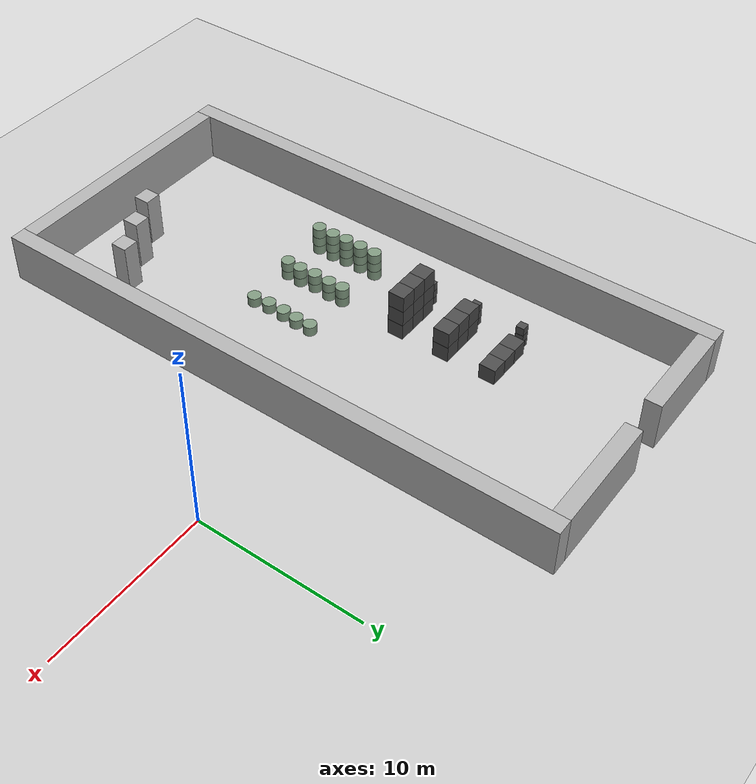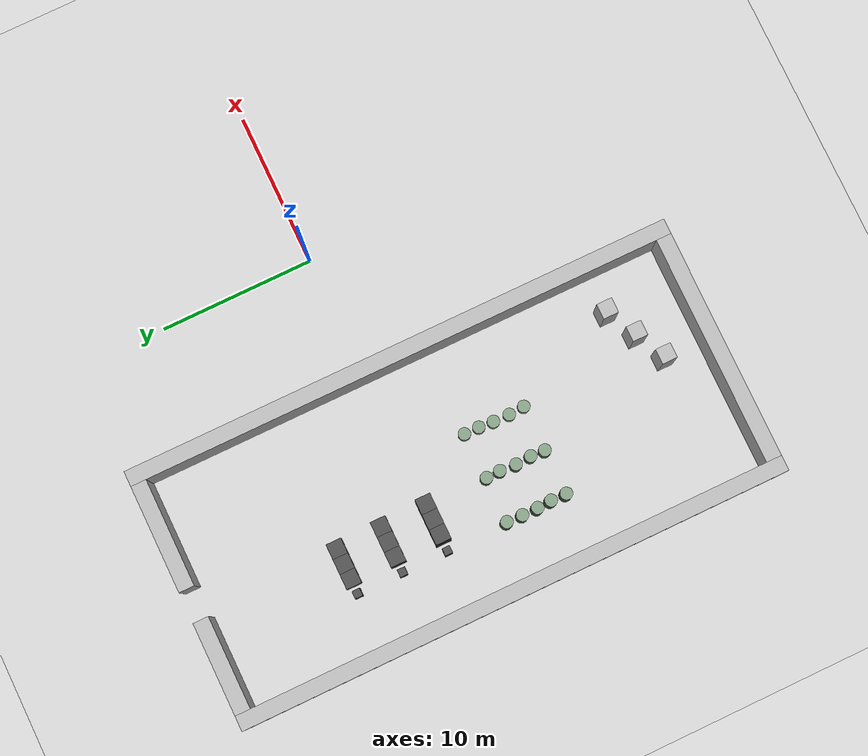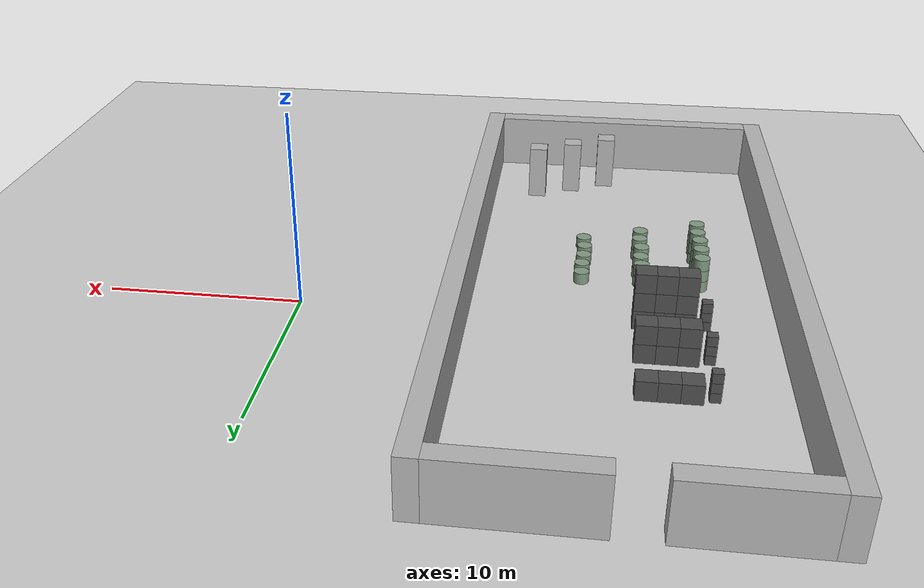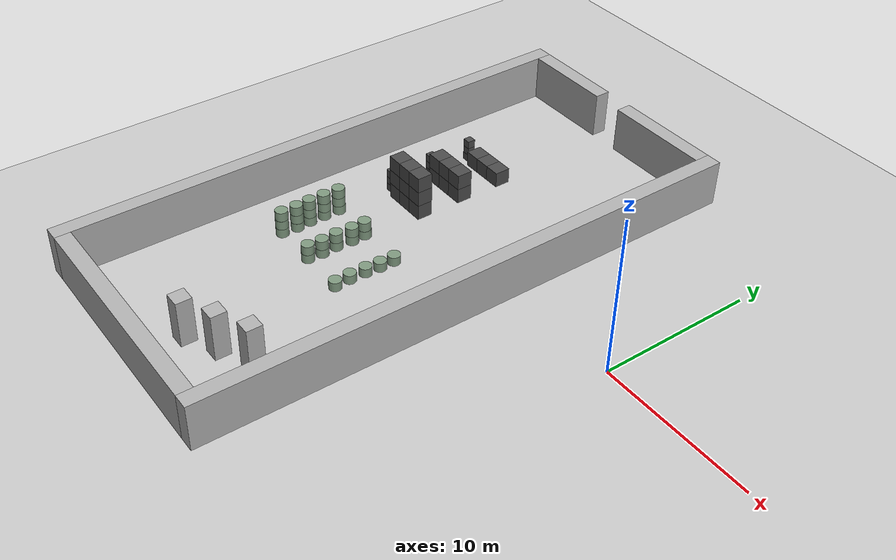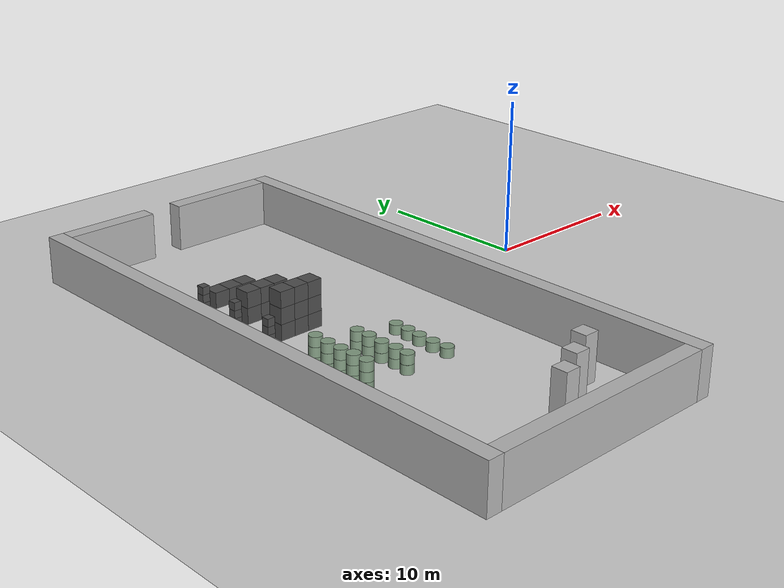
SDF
<sdf version="1.6">
 <world name="default">
  <light name="sun" type="directional">
   <cast_shadows>0</cast_shadows>
   <pose>0 0 10 0 -0 0</pose>
   <diffuse>0.8 0.8 0.8 1</diffuse>
   <specular>0.2 0.2 0.2 1</specular>
   <attenuation>
    <range>1000</range>
    <constant>0.9</constant>
    <linear>0.01</linear>
    <quadratic>0.001</quadratic>
   </attenuation>
   <direction>-0.5 0.1 -0.9</direction>
  </light>
  <include><uri>model://ground_plane</uri></include>
  <gravity>0 0 -9.8</gravity>
  <magnetic_field>6e-06 2.3e-05 -4.2e-05</magnetic_field>
  <atmosphere type="adiabatic"/>
  <physics name="default_physics" default="0" type="ode">
   <max_step_size>0.001</max_step_size>
   <real_time_factor>1</real_time_factor>
   <real_time_update_rate>1000</real_time_update_rate>
  </physics>
  <scene><ambient>0.4 0.4 0.4 1</ambient><background>0.7 0.7 0.7 1</background><shadows>0</shadows></scene>
  <spherical_coordinates>
   <surface_model>EARTH_WGS84</surface_model>
   <latitude_deg>0</latitude_deg>
   <longitude_deg>0</longitude_deg>
   <elevation>0</elevation>
   <heading_deg>0</heading_deg>
  </spherical_coordinates>
  <model name="unit_box_0">
   <pose>-24.0 -2.5 1.5 0 -0 0</pose>
   <static>True</static>
   <link name="link">
    <inertial>
     <mass>100</mass>
     <inertia>
      <ixx>0.166667</ixx>
      <ixy>0</ixy>
      <ixz>0</ixz>
      <iyy>0.166667</iyy>
      <iyz>0</iyz>
      <izz>0.166667</izz>
     </inertia>
    </inertial>
    <collision name="collision"><geometry><box><size>1.0 36.0 3.0</size></box></geometry></collision>
    <visual name="visual">
     <geometry><box><size>1.0 36.0 3.0</size></box></geometry>
     <material><ambient>0.7 0.7 0.7 1</ambient><diffuse>0.7 0.7 0.7 1</diffuse></material>
    </visual>
   </link>
  </model>
  <model name="unit_box_0">
   <pose>-8.0 -2.5 1.5 0 -0 0</pose>
   <static>True</static>
   <link name="link">
    <inertial>
     <mass>100</mass>
     <inertia>
      <ixx>0.166667</ixx>
      <ixy>0</ixy>
      <ixz>0</ixz>
      <iyy>0.166667</iyy>
      <iyz>0</iyz>
      <izz>0.166667</izz>
     </inertia>
    </inertial>
    <collision name="collision"><geometry><box><size>1.0 36.0 3.0</size></box></geometry></collision>
    <visual name="visual">
     <geometry><box><size>1.0 36.0 3.0</size></box></geometry>
     <material><ambient>0.7 0.7 0.7 1</ambient><diffuse>0.7 0.7 0.7 1</diffuse></material>
    </visual>
   </link>
  </model>
  <model name="unit_box_0">
   <pose>-16.0 -20.0 1.5 0 -0 0</pose>
   <static>True</static>
   <link name="link">
    <inertial>
     <mass>100</mass>
     <inertia>
      <ixx>0.166667</ixx>
      <ixy>0</ixy>
      <ixz>0</ixz>
      <iyy>0.166667</iyy>
      <iyz>0</iyz>
      <izz>0.166667</izz>
     </inertia>
    </inertial>
    <collision name="collision"><geometry><box><size>15.0 1.0 3.0</size></box></geometry></collision>
    <visual name="visual">
     <geometry><box><size>15.0 1.0 3.0</size></box></geometry>
     <material><ambient>0.7 0.7 0.7 1</ambient><diffuse>0.7 0.7 0.7 1</diffuse></material>
    </visual>
   </link>
  </model>
  <model name="unit_box_0">
   <pose>-20.5 15.0 1.5 0 -0 0</pose>
   <static>True</static>
   <link name="link">
    <inertial>
     <mass>100</mass>
     <inertia>
      <ixx>0.166667</ixx>
      <ixy>0</ixy>
      <ixz>0</ixz>
      <iyy>0.166667</iyy>
      <iyz>0</iyz>
      <izz>0.166667</izz>
     </inertia>
    </inertial>
    <collision name="collision"><geometry><box><size>6.0 1.0 3.0</size></box></geometry></collision>
    <visual name="visual">
     <geometry><box><size>6.0 1.0 3.0</size></box></geometry>
     <material><ambient>0.7 0.7 0.7 1</ambient><diffuse>0.7 0.7 0.7 1</diffuse></material>
    </visual>
   </link>
  </model>
  <model name="unit_box_0">
   <pose>-12.0 15.0 1.5 0 -0 0</pose>
   <static>True</static>
   <link name="link">
    <inertial>
     <mass>100</mass>
     <inertia>
      <ixx>0.166667</ixx>
      <ixy>0</ixy>
      <ixz>0</ixz>
      <iyy>0.166667</iyy>
      <iyz>0</iyz>
      <izz>0.166667</izz>
     </inertia>
    </inertial>
    <collision name="collision"><geometry><box><size>7.0 1.0 3.0</size></box></geometry></collision>
    <visual name="visual">
     <geometry><box><size>7.0 1.0 3.0</size></box></geometry>
     <material><ambient>0.7 0.7 0.7 1</ambient><diffuse>0.7 0.7 0.7 1</diffuse></material>
    </visual>
   </link>
  </model>
  <model name="unit_box_0">
   <pose>-15.0 -17.0 1.5 0 -0 0</pose>
   <static>True</static>
   <link name="link">
    <inertial>
     <mass>100</mass>
     <inertia>
      <ixx>0.166667</ixx>
      <ixy>0</ixy>
      <ixz>0</ixz>
      <iyy>0.166667</iyy>
      <iyz>0</iyz>
      <izz>0.166667</izz>
     </inertia>
    </inertial>
    <collision name="collision"><geometry><box><size>1.0 1.0 3.0</size></box></geometry></collision>
    <visual name="visual">
     <geometry><box><size>1.0 1.0 3.0</size></box></geometry>
     <material><ambient>0.7 0.7 0.7 1</ambient><diffuse>0.7 0.7 0.7 1</diffuse></material>
    </visual>
   </link>
  </model>
  <model name="unit_box_0">
   <pose>-13.0 -16.0 1.5 0 -0 0</pose>
   <static>True</static>
   <link name="link">
    <inertial>
     <mass>100</mass>
     <inertia>
      <ixx>0.166667</ixx>
      <ixy>0</ixy>
      <ixz>0</ixz>
      <iyy>0.166667</iyy>
      <iyz>0</iyz>
      <izz>0.166667</izz>
     </inertia>
    </inertial>
    <collision name="collision"><geometry><box><size>1.0 1.0 3.0</size></box></geometry></collision>
    <visual name="visual">
     <geometry><box><size>1.0 1.0 3.0</size></box></geometry>
     <material><ambient>0.7 0.7 0.7 1</ambient><diffuse>0.7 0.7 0.7 1</diffuse></material>
    </visual>
   </link>
  </model>
  <model name="unit_box_0">
   <pose>-11.0 -15.0 1.5 0 -0 0</pose>
   <static>True</static>
   <link name="link">
    <inertial>
     <mass>100</mass>
     <inertia>
      <ixx>0.166667</ixx>
      <ixy>0</ixy>
      <ixz>0</ixz>
      <iyy>0.166667</iyy>
      <iyz>0</iyz>
      <izz>0.166667</izz>
     </inertia>
    </inertial>
    <collision name="collision"><geometry><box><size>1.0 1.0 3.0</size></box></geometry></collision>
    <visual name="visual">
     <geometry><box><size>1.0 1.0 3.0</size></box></geometry>
     <material><ambient>0.7 0.7 0.7 1</ambient><diffuse>0.7 0.7 0.7 1</diffuse></material>
    </visual>
   </link>
  </model>
  <model name="unit_box_0">
   <pose>-20.0 0.0 0.25 0 -0 0</pose>
   <static>True</static>
   <link name="link">
    <inertial>
     <mass>100</mass>
     <inertia>
      <ixx>0.166667</ixx>
      <ixy>0</ixy>
      <ixz>0</ixz>
      <iyy>0.166667</iyy>
      <iyz>0</iyz>
      <izz>0.166667</izz>
     </inertia>
    </inertial>
    <collision name="collision"><geometry><box><size>0.5 0.5 0.5</size></box></geometry></collision>
    <visual name="visual">
     <geometry><box><size>0.5 0.5 0.5</size></box></geometry>
     <material><ambient>0.3 0.3 0.3 1</ambient><diffuse>0.3 0.3 0.3 1</diffuse></material>
    </visual>
   </link>
  </model>
  <model name="unit_box_1">
   <pose>-20.0 0.0 0.75 0 -0 0</pose>
   <static>True</static>
   <link name="link">
    <inertial>
     <mass>100</mass>
     <inertia>
      <ixx>0.166667</ixx>
      <ixy>0</ixy>
      <ixz>0</ixz>
      <iyy>0.166667</iyy>
      <iyz>0</iyz>
      <izz>0.166667</izz>
     </inertia>
    </inertial>
    <collision name="collision"><geometry><box><size>0.5 0.5 0.5</size></box></geometry></collision>
    <visual name="visual">
     <geometry><box><size>0.5 0.5 0.5</size></box></geometry>
     <material><ambient>0.3 0.3 0.3 1</ambient><diffuse>0.3 0.3 0.3 1</diffuse></material>
    </visual>
   </link>
  </model>
  <model name="unit_box_2">
   <pose>-20.0 0.0 1.25 0 -0 0</pose>
   <static>True</static>
   <link name="link">
    <inertial>
     <mass>100</mass>
     <inertia>
      <ixx>0.166667</ixx>
      <ixy>0</ixy>
      <ixz>0</ixz>
      <iyy>0.166667</iyy>
      <iyz>0</iyz>
      <izz>0.166667</izz>
     </inertia>
    </inertial>
    <collision name="collision"><geometry><box><size>0.5 0.5 0.5</size></box></geometry></collision>
    <visual name="visual">
     <geometry><box><size>0.5 0.5 0.5</size></box></geometry>
     <material><ambient>0.3 0.3 0.3 1</ambient><diffuse>0.3 0.3 0.3 1</diffuse></material>
    </visual>
   </link>
  </model>
  <model name="unit_box_3">
   <pose>-20.0 3.0 0.25 0 -0 0</pose>
   <static>True</static>
   <link name="link">
    <inertial>
     <mass>100</mass>
     <inertia>
      <ixx>0.166667</ixx>
      <ixy>0</ixy>
      <ixz>0</ixz>
      <iyy>0.166667</iyy>
      <iyz>0</iyz>
      <izz>0.166667</izz>
     </inertia>
    </inertial>
    <collision name="collision"><geometry><box><size>0.5 0.5 0.5</size></box></geometry></collision>
    <visual name="visual">
     <geometry><box><size>0.5 0.5 0.5</size></box></geometry>
     <material><ambient>0.3 0.3 0.3 1</ambient><diffuse>0.3 0.3 0.3 1</diffuse></material>
    </visual>
   </link>
  </model>
  <model name="unit_box_4">
   <pose>-20.0 3.0 0.75 0 -0 0</pose>
   <static>True</static>
   <link name="link">
    <inertial>
     <mass>100</mass>
     <inertia>
      <ixx>0.166667</ixx>
      <ixy>0</ixy>
      <ixz>0</ixz>
      <iyy>0.166667</iyy>
      <iyz>0</iyz>
      <izz>0.166667</izz>
     </inertia>
    </inertial>
    <collision name="collision"><geometry><box><size>0.5 0.5 0.5</size></box></geometry></collision>
    <visual name="visual">
     <geometry><box><size>0.5 0.5 0.5</size></box></geometry>
     <material><ambient>0.3 0.3 0.3 1</ambient><diffuse>0.3 0.3 0.3 1</diffuse></material>
    </visual>
   </link>
  </model>
  <model name="unit_box_5">
   <pose>-20.0 3.0 1.25 0 -0 0</pose>
   <static>True</static>
   <link name="link">
    <inertial>
     <mass>100</mass>
     <inertia>
      <ixx>0.166667</ixx>
      <ixy>0</ixy>
      <ixz>0</ixz>
      <iyy>0.166667</iyy>
      <iyz>0</iyz>
      <izz>0.166667</izz>
     </inertia>
    </inertial>
    <collision name="collision"><geometry><box><size>0.5 0.5 0.5</size></box></geometry></collision>
    <visual name="visual">
     <geometry><box><size>0.5 0.5 0.5</size></box></geometry>
     <material><ambient>0.3 0.3 0.3 1</ambient><diffuse>0.3 0.3 0.3 1</diffuse></material>
    </visual>
   </link>
  </model>
  <model name="unit_box_6">
   <pose>-20.0 6.0 0.25 0 -0 0</pose>
   <static>True</static>
   <link name="link">
    <inertial>
     <mass>100</mass>
     <inertia>
      <ixx>0.166667</ixx>
      <ixy>0</ixy>
      <ixz>0</ixz>
      <iyy>0.166667</iyy>
      <iyz>0</iyz>
      <izz>0.166667</izz>
     </inertia>
    </inertial>
    <collision name="collision"><geometry><box><size>0.5 0.5 0.5</size></box></geometry></collision>
    <visual name="visual">
     <geometry><box><size>0.5 0.5 0.5</size></box></geometry>
     <material><ambient>0.3 0.3 0.3 1</ambient><diffuse>0.3 0.3 0.3 1</diffuse></material>
    </visual>
   </link>
  </model>
  <model name="unit_box_7">
   <pose>-20.0 6.0 0.75 0 -0 0</pose>
   <static>True</static>
   <link name="link">
    <inertial>
     <mass>100</mass>
     <inertia>
      <ixx>0.166667</ixx>
      <ixy>0</ixy>
      <ixz>0</ixz>
      <iyy>0.166667</iyy>
      <iyz>0</iyz>
      <izz>0.166667</izz>
     </inertia>
    </inertial>
    <collision name="collision"><geometry><box><size>0.5 0.5 0.5</size></box></geometry></collision>
    <visual name="visual">
     <geometry><box><size>0.5 0.5 0.5</size></box></geometry>
     <material><ambient>0.3 0.3 0.3 1</ambient><diffuse>0.3 0.3 0.3 1</diffuse></material>
    </visual>
   </link>
  </model>
  <model name="unit_box_8">
   <pose>-20.0 6.0 1.25 0 -0 0</pose>
   <static>True</static>
   <link name="link">
    <inertial>
     <mass>100</mass>
     <inertia>
      <ixx>0.166667</ixx>
      <ixy>0</ixy>
      <ixz>0</ixz>
      <iyy>0.166667</iyy>
      <iyz>0</iyz>
      <izz>0.166667</izz>
     </inertia>
    </inertial>
    <collision name="collision"><geometry><box><size>0.5 0.5 0.5</size></box></geometry></collision>
    <visual name="visual">
     <geometry><box><size>0.5 0.5 0.5</size></box></geometry>
     <material><ambient>0.3 0.3 0.3 1</ambient><diffuse>0.3 0.3 0.3 1</diffuse></material>
    </visual>
   </link>
  </model>
  <model name="unit_box_9">
   <pose>-19.0 0.0 0.5 0 -0 0</pose>
   <static>True</static>
   <link name="link">
    <inertial>
     <mass>100</mass>
     <inertia>
      <ixx>0.166667</ixx>
      <ixy>0</ixy>
      <ixz>0</ixz>
      <iyy>0.166667</iyy>
      <iyz>0</iyz>
      <izz>0.166667</izz>
     </inertia>
    </inertial>
    <collision name="collision"><geometry><box><size>1.0 1.0 1.0</size></box></geometry></collision>
    <visual name="visual">
     <geometry><box><size>1.0 1.0 1.0</size></box></geometry>
     <material><ambient>0.3 0.3 0.3 1</ambient><diffuse>0.3 0.3 0.3 1</diffuse></material>
    </visual>
   </link>
  </model>
  <model name="unit_box_10">
   <pose>-19.0 0.0 1.5 0 -0 0</pose>
   <static>True</static>
   <link name="link">
    <inertial>
     <mass>100</mass>
     <inertia>
      <ixx>0.166667</ixx>
      <ixy>0</ixy>
      <ixz>0</ixz>
      <iyy>0.166667</iyy>
      <iyz>0</iyz>
      <izz>0.166667</izz>
     </inertia>
    </inertial>
    <collision name="collision"><geometry><box><size>1.0 1.0 1.0</size></box></geometry></collision>
    <visual name="visual">
     <geometry><box><size>1.0 1.0 1.0</size></box></geometry>
     <material><ambient>0.3 0.3 0.3 1</ambient><diffuse>0.3 0.3 0.3 1</diffuse></material>
    </visual>
   </link>
  </model>
  <model name="unit_box_11">
   <pose>-19.0 0.0 2.5 0 -0 0</pose>
   <static>True</static>
   <link name="link">
    <inertial>
     <mass>100</mass>
     <inertia>
      <ixx>0.166667</ixx>
      <ixy>0</ixy>
      <ixz>0</ixz>
      <iyy>0.166667</iyy>
      <iyz>0</iyz>
      <izz>0.166667</izz>
     </inertia>
    </inertial>
    <collision name="collision"><geometry><box><size>1.0 1.0 1.0</size></box></geometry></collision>
    <visual name="visual">
     <geometry><box><size>1.0 1.0 1.0</size></box></geometry>
     <material><ambient>0.3 0.3 0.3 1</ambient><diffuse>0.3 0.3 0.3 1</diffuse></material>
    </visual>
   </link>
  </model>
  <model name="unit_box_12">
   <pose>-19.0 3.0 0.5 0 -0 0</pose>
   <static>True</static>
   <link name="link">
    <inertial>
     <mass>100</mass>
     <inertia>
      <ixx>0.166667</ixx>
      <ixy>0</ixy>
      <ixz>0</ixz>
      <iyy>0.166667</iyy>
      <iyz>0</iyz>
      <izz>0.166667</izz>
     </inertia>
    </inertial>
    <collision name="collision"><geometry><box><size>1.0 1.0 1.0</size></box></geometry></collision>
    <visual name="visual">
     <geometry><box><size>1.0 1.0 1.0</size></box></geometry>
     <material><ambient>0.3 0.3 0.3 1</ambient><diffuse>0.3 0.3 0.3 1</diffuse></material>
    </visual>
   </link>
  </model>
  <model name="unit_box_13">
   <pose>-19.0 3.0 1.5 0 -0 0</pose>
   <static>True</static>
   <link name="link">
    <inertial>
     <mass>100</mass>
     <inertia>
      <ixx>0.166667</ixx>
      <ixy>0</ixy>
      <ixz>0</ixz>
      <iyy>0.166667</iyy>
      <iyz>0</iyz>
      <izz>0.166667</izz>
     </inertia>
    </inertial>
    <collision name="collision"><geometry><box><size>1.0 1.0 1.0</size></box></geometry></collision>
    <visual name="visual">
     <geometry><box><size>1.0 1.0 1.0</size></box></geometry>
     <material><ambient>0.3 0.3 0.3 1</ambient><diffuse>0.3 0.3 0.3 1</diffuse></material>
    </visual>
   </link>
  </model>
  <model name="unit_box_14">
   <pose>-19.0 6.0 0.5 0 -0 0</pose>
   <static>True</static>
   <link name="link">
    <inertial>
     <mass>100</mass>
     <inertia>
      <ixx>0.166667</ixx>
      <ixy>0</ixy>
      <ixz>0</ixz>
      <iyy>0.166667</iyy>
      <iyz>0</iyz>
      <izz>0.166667</izz>
     </inertia>
    </inertial>
    <collision name="collision"><geometry><box><size>1.0 1.0 1.0</size></box></geometry></collision>
    <visual name="visual">
     <geometry><box><size>1.0 1.0 1.0</size></box></geometry>
     <material><ambient>0.3 0.3 0.3 1</ambient><diffuse>0.3 0.3 0.3 1</diffuse></material>
    </visual>
   </link>
  </model>
  <model name="unit_box_15">
   <pose>-18.0 0.0 0.5 0 -0 0</pose>
   <static>True</static>
   <link name="link">
    <inertial>
     <mass>100</mass>
     <inertia>
      <ixx>0.166667</ixx>
      <ixy>0</ixy>
      <ixz>0</ixz>
      <iyy>0.166667</iyy>
      <iyz>0</iyz>
      <izz>0.166667</izz>
     </inertia>
    </inertial>
    <collision name="collision"><geometry><box><size>1.0 1.0 1.0</size></box></geometry></collision>
    <visual name="visual">
     <geometry><box><size>1.0 1.0 1.0</size></box></geometry>
     <material><ambient>0.3 0.3 0.3 1</ambient><diffuse>0.3 0.3 0.3 1</diffuse></material>
    </visual>
   </link>
  </model>
  <model name="unit_box_16">
   <pose>-18.0 0.0 1.5 0 -0 0</pose>
   <static>True</static>
   <link name="link">
    <inertial>
     <mass>100</mass>
     <inertia>
      <ixx>0.166667</ixx>
      <ixy>0</ixy>
      <ixz>0</ixz>
      <iyy>0.166667</iyy>
      <iyz>0</iyz>
      <izz>0.166667</izz>
     </inertia>
    </inertial>
    <collision name="collision"><geometry><box><size>1.0 1.0 1.0</size></box></geometry></collision>
    <visual name="visual">
     <geometry><box><size>1.0 1.0 1.0</size></box></geometry>
     <material><ambient>0.3 0.3 0.3 1</ambient><diffuse>0.3 0.3 0.3 1</diffuse></material>
    </visual>
   </link>
  </model>
  <model name="unit_box_17">
   <pose>-18.0 0.0 2.5 0 -0 0</pose>
   <static>True</static>
   <link name="link">
    <inertial>
     <mass>100</mass>
     <inertia>
      <ixx>0.166667</ixx>
      <ixy>0</ixy>
      <ixz>0</ixz>
      <iyy>0.166667</iyy>
      <iyz>0</iyz>
      <izz>0.166667</izz>
     </inertia>
    </inertial>
    <collision name="collision"><geometry><box><size>1.0 1.0 1.0</size></box></geometry></collision>
    <visual name="visual">
     <geometry><box><size>1.0 1.0 1.0</size></box></geometry>
     <material><ambient>0.3 0.3 0.3 1</ambient><diffuse>0.3 0.3 0.3 1</diffuse></material>
    </visual>
   </link>
  </model>
  <model name="unit_box_18">
   <pose>-18.0 3.0 0.5 0 -0 0</pose>
   <static>True</static>
   <link name="link">
    <inertial>
     <mass>100</mass>
     <inertia>
      <ixx>0.166667</ixx>
      <ixy>0</ixy>
      <ixz>0</ixz>
      <iyy>0.166667</iyy>
      <iyz>0</iyz>
      <izz>0.166667</izz>
     </inertia>
    </inertial>
    <collision name="collision"><geometry><box><size>1.0 1.0 1.0</size></box></geometry></collision>
    <visual name="visual">
     <geometry><box><size>1.0 1.0 1.0</size></box></geometry>
     <material><ambient>0.3 0.3 0.3 1</ambient><diffuse>0.3 0.3 0.3 1</diffuse></material>
    </visual>
   </link>
  </model>
  <model name="unit_box_19">
   <pose>-18.0 3.0 1.5 0 -0 0</pose>
   <static>True</static>
   <link name="link">
    <inertial>
     <mass>100</mass>
     <inertia>
      <ixx>0.166667</ixx>
      <ixy>0</ixy>
      <ixz>0</ixz>
      <iyy>0.166667</iyy>
      <iyz>0</iyz>
      <izz>0.166667</izz>
     </inertia>
    </inertial>
    <collision name="collision"><geometry><box><size>1.0 1.0 1.0</size></box></geometry></collision>
    <visual name="visual">
     <geometry><box><size>1.0 1.0 1.0</size></box></geometry>
     <material><ambient>0.3 0.3 0.3 1</ambient><diffuse>0.3 0.3 0.3 1</diffuse></material>
    </visual>
   </link>
  </model>
  <model name="unit_box_20">
   <pose>-18.0 6.0 0.5 0 -0 0</pose>
   <static>True</static>
   <link name="link">
    <inertial>
     <mass>100</mass>
     <inertia>
      <ixx>0.166667</ixx>
      <ixy>0</ixy>
      <ixz>0</ixz>
      <iyy>0.166667</iyy>
      <iyz>0</iyz>
      <izz>0.166667</izz>
     </inertia>
    </inertial>
    <collision name="collision"><geometry><box><size>1.0 1.0 1.0</size></box></geometry></collision>
    <visual name="visual">
     <geometry><box><size>1.0 1.0 1.0</size></box></geometry>
     <material><ambient>0.3 0.3 0.3 1</ambient><diffuse>0.3 0.3 0.3 1</diffuse></material>
    </visual>
   </link>
  </model>
  <model name="unit_box_21">
   <pose>-17.0 0.0 0.5 0 -0 0</pose>
   <static>True</static>
   <link name="link">
    <inertial>
     <mass>100</mass>
     <inertia>
      <ixx>0.166667</ixx>
      <ixy>0</ixy>
      <ixz>0</ixz>
      <iyy>0.166667</iyy>
      <iyz>0</iyz>
      <izz>0.166667</izz>
     </inertia>
    </inertial>
    <collision name="collision"><geometry><box><size>1.0 1.0 1.0</size></box></geometry></collision>
    <visual name="visual">
     <geometry><box><size>1.0 1.0 1.0</size></box></geometry>
     <material><ambient>0.3 0.3 0.3 1</ambient><diffuse>0.3 0.3 0.3 1</diffuse></material>
    </visual>
   </link>
  </model>
  <model name="unit_box_22">
   <pose>-17.0 0.0 1.5 0 -0 0</pose>
   <static>True</static>
   <link name="link">
    <inertial>
     <mass>100</mass>
     <inertia>
      <ixx>0.166667</ixx>
      <ixy>0</ixy>
      <ixz>0</ixz>
      <iyy>0.166667</iyy>
      <iyz>0</iyz>
      <izz>0.166667</izz>
     </inertia>
    </inertial>
    <collision name="collision"><geometry><box><size>1.0 1.0 1.0</size></box></geometry></collision>
    <visual name="visual">
     <geometry><box><size>1.0 1.0 1.0</size></box></geometry>
     <material><ambient>0.3 0.3 0.3 1</ambient><diffuse>0.3 0.3 0.3 1</diffuse></material>
    </visual>
   </link>
  </model>
  <model name="unit_box_23">
   <pose>-17.0 0.0 2.5 0 -0 0</pose>
   <static>True</static>
   <link name="link">
    <inertial>
     <mass>100</mass>
     <inertia>
      <ixx>0.166667</ixx>
      <ixy>0</ixy>
      <ixz>0</ixz>
      <iyy>0.166667</iyy>
      <iyz>0</iyz>
      <izz>0.166667</izz>
     </inertia>
    </inertial>
    <collision name="collision"><geometry><box><size>1.0 1.0 1.0</size></box></geometry></collision>
    <visual name="visual">
     <geometry><box><size>1.0 1.0 1.0</size></box></geometry>
     <material><ambient>0.3 0.3 0.3 1</ambient><diffuse>0.3 0.3 0.3 1</diffuse></material>
    </visual>
   </link>
  </model>
  <model name="unit_box_24">
   <pose>-17.0 3.0 0.5 0 -0 0</pose>
   <static>True</static>
   <link name="link">
    <inertial>
     <mass>100</mass>
     <inertia>
      <ixx>0.166667</ixx>
      <ixy>0</ixy>
      <ixz>0</ixz>
      <iyy>0.166667</iyy>
      <iyz>0</iyz>
      <izz>0.166667</izz>
     </inertia>
    </inertial>
    <collision name="collision"><geometry><box><size>1.0 1.0 1.0</size></box></geometry></collision>
    <visual name="visual">
     <geometry><box><size>1.0 1.0 1.0</size></box></geometry>
     <material><ambient>0.3 0.3 0.3 1</ambient><diffuse>0.3 0.3 0.3 1</diffuse></material>
    </visual>
   </link>
  </model>
  <model name="unit_box_25">
   <pose>-17.0 3.0 1.5 0 -0 0</pose>
   <static>True</static>
   <link name="link">
    <inertial>
     <mass>100</mass>
     <inertia>
      <ixx>0.166667</ixx>
      <ixy>0</ixy>
      <ixz>0</ixz>
      <iyy>0.166667</iyy>
      <iyz>0</iyz>
      <izz>0.166667</izz>
     </inertia>
    </inertial>
    <collision name="collision"><geometry><box><size>1.0 1.0 1.0</size></box></geometry></collision>
    <visual name="visual">
     <geometry><box><size>1.0 1.0 1.0</size></box></geometry>
     <material><ambient>0.3 0.3 0.3 1</ambient><diffuse>0.3 0.3 0.3 1</diffuse></material>
    </visual>
   </link>
  </model>
  <model name="unit_box_26">
   <pose>-17.0 6.0 0.5 0 -0 0</pose>
   <static>True</static>
   <link name="link">
    <inertial>
     <mass>100</mass>
     <inertia>
      <ixx>0.166667</ixx>
      <ixy>0</ixy>
      <ixz>0</ixz>
      <iyy>0.166667</iyy>
      <iyz>0</iyz>
      <izz>0.166667</izz>
     </inertia>
    </inertial>
    <collision name="collision"><geometry><box><size>1.0 1.0 1.0</size></box></geometry></collision>
    <visual name="visual">
     <geometry><box><size>1.0 1.0 1.0</size></box></geometry>
     <material><ambient>0.3 0.3 0.3 1</ambient><diffuse>0.3 0.3 0.3 1</diffuse></material>
    </visual>
   </link>
  </model>
  <model name="unit_cylinder_0">
   <pose>-19.983510326 -7.9803665074 0.3 0 -0 0</pose>
   <static>True</static>
   <link name="link">
    <inertial>
     <mass>100</mass>
     <inertia><ixx>0.145833</ixx><ixy>0</ixy><ixz>0</ixz><iyy>0.145833</iyy><iyz>0</iyz><izz>0.125</izz></inertia>
    </inertial>
    <collision name="collision">
     <geometry><cylinder><radius>0.4</radius><length>0.6</length></cylinder></geometry>
     <max_contacts>100</max_contacts>
    </collision>
    <visual name="visual">
     <geometry><cylinder><radius>0.4</radius><length>0.6</length></cylinder></geometry>
     <material><ambient>0.5 0.6 0.5 1</ambient><diffuse>0.5 0.6 0.5 1</diffuse></material>
    </visual>
   </link>
  </model>
  <model name="unit_cylinder_1">
   <pose>-19.9727468806 -7.98474625595 0.9 0 -0 0</pose>
   <static>True</static>
   <link name="link">
    <inertial>
     <mass>100</mass>
     <inertia><ixx>0.145833</ixx><ixy>0</ixy><ixz>0</ixz><iyy>0.145833</iyy><iyz>0</iyz><izz>0.125</izz></inertia>
    </inertial>
    <collision name="collision">
     <geometry><cylinder><radius>0.4</radius><length>0.6</length></cylinder></geometry>
     <max_contacts>100</max_contacts>
    </collision>
    <visual name="visual">
     <geometry><cylinder><radius>0.4</radius><length>0.6</length></cylinder></geometry>
     <material><ambient>0.5 0.6 0.5 1</ambient><diffuse>0.5 0.6 0.5 1</diffuse></material>
    </visual>
   </link>
  </model>
  <model name="unit_cylinder_2">
   <pose>-19.9781501069 -7.97168798199 1.5 0 -0 0</pose>
   <static>True</static>
   <link name="link">
    <inertial>
     <mass>100</mass>
     <inertia><ixx>0.145833</ixx><ixy>0</ixy><ixz>0</ixz><iyy>0.145833</iyy><iyz>0</iyz><izz>0.125</izz></inertia>
    </inertial>
    <collision name="collision">
     <geometry><cylinder><radius>0.4</radius><length>0.6</length></cylinder></geometry>
     <max_contacts>100</max_contacts>
    </collision>
    <visual name="visual">
     <geometry><cylinder><radius>0.4</radius><length>0.6</length></cylinder></geometry>
     <material><ambient>0.5 0.6 0.5 1</ambient><diffuse>0.5 0.6 0.5 1</diffuse></material>
    </visual>
   </link>
  </model>
  <model name="unit_cylinder_3">
   <pose>-19.9472931595 -6.95308038529 0.3 0 -0 0</pose>
   <static>True</static>
   <link name="link">
    <inertial>
     <mass>100</mass>
     <inertia><ixx>0.145833</ixx><ixy>0</ixy><ixz>0</ixz><iyy>0.145833</iyy><iyz>0</iyz><izz>0.125</izz></inertia>
    </inertial>
    <collision name="collision">
     <geometry><cylinder><radius>0.4</radius><length>0.6</length></cylinder></geometry>
     <max_contacts>100</max_contacts>
    </collision>
    <visual name="visual">
     <geometry><cylinder><radius>0.4</radius><length>0.6</length></cylinder></geometry>
     <material><ambient>0.5 0.6 0.5 1</ambient><diffuse>0.5 0.6 0.5 1</diffuse></material>
    </visual>
   </link>
  </model>
  <model name="unit_cylinder_4">
   <pose>-19.953520185 -6.95876860222 0.9 0 -0 0</pose>
   <static>True</static>
   <link name="link">
    <inertial>
     <mass>100</mass>
     <inertia><ixx>0.145833</ixx><ixy>0</ixy><ixz>0</ixz><iyy>0.145833</iyy><iyz>0</iyz><izz>0.125</izz></inertia>
    </inertial>
    <collision name="collision">
     <geometry><cylinder><radius>0.4</radius><length>0.6</length></cylinder></geometry>
     <max_contacts>100</max_contacts>
    </collision>
    <visual name="visual">
     <geometry><cylinder><radius>0.4</radius><length>0.6</length></cylinder></geometry>
     <material><ambient>0.5 0.6 0.5 1</ambient><diffuse>0.5 0.6 0.5 1</diffuse></material>
    </visual>
   </link>
  </model>
  <model name="unit_cylinder_5">
   <pose>-19.9592208408 -6.95885894129 1.5 0 -0 0</pose>
   <static>True</static>
   <link name="link">
    <inertial>
     <mass>100</mass>
     <inertia><ixx>0.145833</ixx><ixy>0</ixy><ixz>0</ixz><iyy>0.145833</iyy><iyz>0</iyz><izz>0.125</izz></inertia>
    </inertial>
    <collision name="collision">
     <geometry><cylinder><radius>0.4</radius><length>0.6</length></cylinder></geometry>
     <max_contacts>100</max_contacts>
    </collision>
    <visual name="visual">
     <geometry><cylinder><radius>0.4</radius><length>0.6</length></cylinder></geometry>
     <material><ambient>0.5 0.6 0.5 1</ambient><diffuse>0.5 0.6 0.5 1</diffuse></material>
    </visual>
   </link>
  </model>
  <model name="unit_cylinder_6">
   <pose>-20.0132523099 -6.02223878276 0.3 0 -0 0</pose>
   <static>True</static>
   <link name="link">
    <inertial>
     <mass>100</mass>
     <inertia><ixx>0.145833</ixx><ixy>0</ixy><ixz>0</ixz><iyy>0.145833</iyy><iyz>0</iyz><izz>0.125</izz></inertia>
    </inertial>
    <collision name="collision">
     <geometry><cylinder><radius>0.4</radius><length>0.6</length></cylinder></geometry>
     <max_contacts>100</max_contacts>
    </collision>
    <visual name="visual">
     <geometry><cylinder><radius>0.4</radius><length>0.6</length></cylinder></geometry>
     <material><ambient>0.5 0.6 0.5 1</ambient><diffuse>0.5 0.6 0.5 1</diffuse></material>
    </visual>
   </link>
  </model>
  <model name="unit_cylinder_7">
   <pose>-20.0153558443 -6.03044837171 0.9 0 -0 0</pose>
   <static>True</static>
   <link name="link">
    <inertial>
     <mass>100</mass>
     <inertia><ixx>0.145833</ixx><ixy>0</ixy><ixz>0</ixz><iyy>0.145833</iyy><iyz>0</iyz><izz>0.125</izz></inertia>
    </inertial>
    <collision name="collision">
     <geometry><cylinder><radius>0.4</radius><length>0.6</length></cylinder></geometry>
     <max_contacts>100</max_contacts>
    </collision>
    <visual name="visual">
     <geometry><cylinder><radius>0.4</radius><length>0.6</length></cylinder></geometry>
     <material><ambient>0.5 0.6 0.5 1</ambient><diffuse>0.5 0.6 0.5 1</diffuse></material>
    </visual>
   </link>
  </model>
  <model name="unit_cylinder_8">
   <pose>-20.0137323654 -6.03205641168 1.5 0 -0 0</pose>
   <static>True</static>
   <link name="link">
    <inertial>
     <mass>100</mass>
     <inertia><ixx>0.145833</ixx><ixy>0</ixy><ixz>0</ixz><iyy>0.145833</iyy><iyz>0</iyz><izz>0.125</izz></inertia>
    </inertial>
    <collision name="collision">
     <geometry><cylinder><radius>0.4</radius><length>0.6</length></cylinder></geometry>
     <max_contacts>100</max_contacts>
    </collision>
    <visual name="visual">
     <geometry><cylinder><radius>0.4</radius><length>0.6</length></cylinder></geometry>
     <material><ambient>0.5 0.6 0.5 1</ambient><diffuse>0.5 0.6 0.5 1</diffuse></material>
    </visual>
   </link>
  </model>
  <model name="unit_cylinder_9">
   <pose>-20.0114733924 -5.00858218917 0.3 0 -0 0</pose>
   <static>True</static>
   <link name="link">
    <inertial>
     <mass>100</mass>
     <inertia><ixx>0.145833</ixx><ixy>0</ixy><ixz>0</ixz><iyy>0.145833</iyy><iyz>0</iyz><izz>0.125</izz></inertia>
    </inertial>
    <collision name="collision">
     <geometry><cylinder><radius>0.4</radius><length>0.6</length></cylinder></geometry>
     <max_contacts>100</max_contacts>
    </collision>
    <visual name="visual">
     <geometry><cylinder><radius>0.4</radius><length>0.6</length></cylinder></geometry>
     <material><ambient>0.5 0.6 0.5 1</ambient><diffuse>0.5 0.6 0.5 1</diffuse></material>
    </visual>
   </link>
  </model>
  <model name="unit_cylinder_10">
   <pose>-20.0017003913 -5.00246272029 0.9 0 -0 0</pose>
   <static>True</static>
   <link name="link">
    <inertial>
     <mass>100</mass>
     <inertia><ixx>0.145833</ixx><ixy>0</ixy><ixz>0</ixz><iyy>0.145833</iyy><iyz>0</iyz><izz>0.125</izz></inertia>
    </inertial>
    <collision name="collision">
     <geometry><cylinder><radius>0.4</radius><length>0.6</length></cylinder></geometry>
     <max_contacts>100</max_contacts>
    </collision>
    <visual name="visual">
     <geometry><cylinder><radius>0.4</radius><length>0.6</length></cylinder></geometry>
     <material><ambient>0.5 0.6 0.5 1</ambient><diffuse>0.5 0.6 0.5 1</diffuse></material>
    </visual>
   </link>
  </model>
  <model name="unit_cylinder_11">
   <pose>-20.0157384298 -5.01272921444 1.5 0 -0 0</pose>
   <static>True</static>
   <link name="link">
    <inertial>
     <mass>100</mass>
     <inertia><ixx>0.145833</ixx><ixy>0</ixy><ixz>0</ixz><iyy>0.145833</iyy><iyz>0</iyz><izz>0.125</izz></inertia>
    </inertial>
    <collision name="collision">
     <geometry><cylinder><radius>0.4</radius><length>0.6</length></cylinder></geometry>
     <max_contacts>100</max_contacts>
    </collision>
    <visual name="visual">
     <geometry><cylinder><radius>0.4</radius><length>0.6</length></cylinder></geometry>
     <material><ambient>0.5 0.6 0.5 1</ambient><diffuse>0.5 0.6 0.5 1</diffuse></material>
    </visual>
   </link>
  </model>
  <model name="unit_cylinder_12">
   <pose>-19.9905237088 -3.96755594647 0.3 0 -0 0</pose>
   <static>True</static>
   <link name="link">
    <inertial>
     <mass>100</mass>
     <inertia><ixx>0.145833</ixx><ixy>0</ixy><ixz>0</ixz><iyy>0.145833</iyy><iyz>0</iyz><izz>0.125</izz></inertia>
    </inertial>
    <collision name="collision">
     <geometry><cylinder><radius>0.4</radius><length>0.6</length></cylinder></geometry>
     <max_contacts>100</max_contacts>
    </collision>
    <visual name="visual">
     <geometry><cylinder><radius>0.4</radius><length>0.6</length></cylinder></geometry>
     <material><ambient>0.5 0.6 0.5 1</ambient><diffuse>0.5 0.6 0.5 1</diffuse></material>
    </visual>
   </link>
  </model>
  <model name="unit_cylinder_13">
   <pose>-19.9976394683 -3.98372226822 0.9 0 -0 0</pose>
   <static>True</static>
   <link name="link">
    <inertial>
     <mass>100</mass>
     <inertia><ixx>0.145833</ixx><ixy>0</ixy><ixz>0</ixz><iyy>0.145833</iyy><iyz>0</iyz><izz>0.125</izz></inertia>
    </inertial>
    <collision name="collision">
     <geometry><cylinder><radius>0.4</radius><length>0.6</length></cylinder></geometry>
     <max_contacts>100</max_contacts>
    </collision>
    <visual name="visual">
     <geometry><cylinder><radius>0.4</radius><length>0.6</length></cylinder></geometry>
     <material><ambient>0.5 0.6 0.5 1</ambient><diffuse>0.5 0.6 0.5 1</diffuse></material>
    </visual>
   </link>
  </model>
  <model name="unit_cylinder_14">
   <pose>-19.9864309566 -3.97713254289 1.5 0 -0 0</pose>
   <static>True</static>
   <link name="link">
    <inertial>
     <mass>100</mass>
     <inertia><ixx>0.145833</ixx><ixy>0</ixy><ixz>0</ixz><iyy>0.145833</iyy><iyz>0</iyz><izz>0.125</izz></inertia>
    </inertial>
    <collision name="collision">
     <geometry><cylinder><radius>0.4</radius><length>0.6</length></cylinder></geometry>
     <max_contacts>100</max_contacts>
    </collision>
    <visual name="visual">
     <geometry><cylinder><radius>0.4</radius><length>0.6</length></cylinder></geometry>
     <material><ambient>0.5 0.6 0.5 1</ambient><diffuse>0.5 0.6 0.5 1</diffuse></material>
    </visual>
   </link>
  </model>
  <model name="unit_cylinder_15">
   <pose>-17.0116873006 -7.99551521531 0.3 0 -0 0</pose>
   <static>True</static>
   <link name="link">
    <inertial>
     <mass>100</mass>
     <inertia><ixx>0.145833</ixx><ixy>0</ixy><ixz>0</ixz><iyy>0.145833</iyy><iyz>0</iyz><izz>0.125</izz></inertia>
    </inertial>
    <collision name="collision">
     <geometry><cylinder><radius>0.4</radius><length>0.6</length></cylinder></geometry>
     <max_contacts>100</max_contacts>
    </collision>
    <visual name="visual">
     <geometry><cylinder><radius>0.4</radius><length>0.6</length></cylinder></geometry>
     <material><ambient>0.5 0.6 0.5 1</ambient><diffuse>0.5 0.6 0.5 1</diffuse></material>
    </visual>
   </link>
  </model>
  <model name="unit_cylinder_16">
   <pose>-17.0085553583 -7.98912948422 0.9 0 -0 0</pose>
   <static>True</static>
   <link name="link">
    <inertial>
     <mass>100</mass>
     <inertia><ixx>0.145833</ixx><ixy>0</ixy><ixz>0</ixz><iyy>0.145833</iyy><iyz>0</iyz><izz>0.125</izz></inertia>
    </inertial>
    <collision name="collision">
     <geometry><cylinder><radius>0.4</radius><length>0.6</length></cylinder></geometry>
     <max_contacts>100</max_contacts>
    </collision>
    <visual name="visual">
     <geometry><cylinder><radius>0.4</radius><length>0.6</length></cylinder></geometry>
     <material><ambient>0.5 0.6 0.5 1</ambient><diffuse>0.5 0.6 0.5 1</diffuse></material>
    </visual>
   </link>
  </model>
  <model name="unit_cylinder_17">
   <pose>-16.9506456513 -7.04757733804 0.3 0 -0 0</pose>
   <static>True</static>
   <link name="link">
    <inertial>
     <mass>100</mass>
     <inertia><ixx>0.145833</ixx><ixy>0</ixy><ixz>0</ixz><iyy>0.145833</iyy><iyz>0</iyz><izz>0.125</izz></inertia>
    </inertial>
    <collision name="collision">
     <geometry><cylinder><radius>0.4</radius><length>0.6</length></cylinder></geometry>
     <max_contacts>100</max_contacts>
    </collision>
    <visual name="visual">
     <geometry><cylinder><radius>0.4</radius><length>0.6</length></cylinder></geometry>
     <material><ambient>0.5 0.6 0.5 1</ambient><diffuse>0.5 0.6 0.5 1</diffuse></material>
    </visual>
   </link>
  </model>
  <model name="unit_cylinder_18">
   <pose>-16.9563102854 -7.05286483911 0.9 0 -0 0</pose>
   <static>True</static>
   <link name="link">
    <inertial>
     <mass>100</mass>
     <inertia><ixx>0.145833</ixx><ixy>0</ixy><ixz>0</ixz><iyy>0.145833</iyy><iyz>0</iyz><izz>0.125</izz></inertia>
    </inertial>
    <collision name="collision">
     <geometry><cylinder><radius>0.4</radius><length>0.6</length></cylinder></geometry>
     <max_contacts>100</max_contacts>
    </collision>
    <visual name="visual">
     <geometry><cylinder><radius>0.4</radius><length>0.6</length></cylinder></geometry>
     <material><ambient>0.5 0.6 0.5 1</ambient><diffuse>0.5 0.6 0.5 1</diffuse></material>
    </visual>
   </link>
  </model>
  <model name="unit_cylinder_19">
   <pose>-17.0362589415 -6.03237471311 0.3 0 -0 0</pose>
   <static>True</static>
   <link name="link">
    <inertial>
     <mass>100</mass>
     <inertia><ixx>0.145833</ixx><ixy>0</ixy><ixz>0</ixz><iyy>0.145833</iyy><iyz>0</iyz><izz>0.125</izz></inertia>
    </inertial>
    <collision name="collision">
     <geometry><cylinder><radius>0.4</radius><length>0.6</length></cylinder></geometry>
     <max_contacts>100</max_contacts>
    </collision>
    <visual name="visual">
     <geometry><cylinder><radius>0.4</radius><length>0.6</length></cylinder></geometry>
     <material><ambient>0.5 0.6 0.5 1</ambient><diffuse>0.5 0.6 0.5 1</diffuse></material>
    </visual>
   </link>
  </model>
  <model name="unit_cylinder_20">
   <pose>-17.0287719694 -6.03411489571 0.9 0 -0 0</pose>
   <static>True</static>
   <link name="link">
    <inertial>
     <mass>100</mass>
     <inertia><ixx>0.145833</ixx><ixy>0</ixy><ixz>0</ixz><iyy>0.145833</iyy><iyz>0</iyz><izz>0.125</izz></inertia>
    </inertial>
    <collision name="collision">
     <geometry><cylinder><radius>0.4</radius><length>0.6</length></cylinder></geometry>
     <max_contacts>100</max_contacts>
    </collision>
    <visual name="visual">
     <geometry><cylinder><radius>0.4</radius><length>0.6</length></cylinder></geometry>
     <material><ambient>0.5 0.6 0.5 1</ambient><diffuse>0.5 0.6 0.5 1</diffuse></material>
    </visual>
   </link>
  </model>
  <model name="unit_cylinder_21">
   <pose>-16.9636943974 -4.96675095586 0.3 0 -0 0</pose>
   <static>True</static>
   <link name="link">
    <inertial>
     <mass>100</mass>
     <inertia><ixx>0.145833</ixx><ixy>0</ixy><ixz>0</ixz><iyy>0.145833</iyy><iyz>0</iyz><izz>0.125</izz></inertia>
    </inertial>
    <collision name="collision">
     <geometry><cylinder><radius>0.4</radius><length>0.6</length></cylinder></geometry>
     <max_contacts>100</max_contacts>
    </collision>
    <visual name="visual">
     <geometry><cylinder><radius>0.4</radius><length>0.6</length></cylinder></geometry>
     <material><ambient>0.5 0.6 0.5 1</ambient><diffuse>0.5 0.6 0.5 1</diffuse></material>
    </visual>
   </link>
  </model>
  <model name="unit_cylinder_22">
   <pose>-16.9647075145 -4.97093291946 0.9 0 -0 0</pose>
   <static>True</static>
   <link name="link">
    <inertial>
     <mass>100</mass>
     <inertia><ixx>0.145833</ixx><ixy>0</ixy><ixz>0</ixz><iyy>0.145833</iyy><iyz>0</iyz><izz>0.125</izz></inertia>
    </inertial>
    <collision name="collision">
     <geometry><cylinder><radius>0.4</radius><length>0.6</length></cylinder></geometry>
     <max_contacts>100</max_contacts>
    </collision>
    <visual name="visual">
     <geometry><cylinder><radius>0.4</radius><length>0.6</length></cylinder></geometry>
     <material><ambient>0.5 0.6 0.5 1</ambient><diffuse>0.5 0.6 0.5 1</diffuse></material>
    </visual>
   </link>
  </model>
  <model name="unit_cylinder_23">
   <pose>-16.9950752606 -4.04936252095 0.3 0 -0 0</pose>
   <static>True</static>
   <link name="link">
    <inertial>
     <mass>100</mass>
     <inertia><ixx>0.145833</ixx><ixy>0</ixy><ixz>0</ixz><iyy>0.145833</iyy><iyz>0</iyz><izz>0.125</izz></inertia>
    </inertial>
    <collision name="collision">
     <geometry><cylinder><radius>0.4</radius><length>0.6</length></cylinder></geometry>
     <max_contacts>100</max_contacts>
    </collision>
    <visual name="visual">
     <geometry><cylinder><radius>0.4</radius><length>0.6</length></cylinder></geometry>
     <material><ambient>0.5 0.6 0.5 1</ambient><diffuse>0.5 0.6 0.5 1</diffuse></material>
    </visual>
   </link>
  </model>
  <model name="unit_cylinder_24">
   <pose>-17.0067414063 -4.05441555662 0.9 0 -0 0</pose>
   <static>True</static>
   <link name="link">
    <inertial>
     <mass>100</mass>
     <inertia><ixx>0.145833</ixx><ixy>0</ixy><ixz>0</ixz><iyy>0.145833</iyy><iyz>0</iyz><izz>0.125</izz></inertia>
    </inertial>
    <collision name="collision">
     <geometry><cylinder><radius>0.4</radius><length>0.6</length></cylinder></geometry>
     <max_contacts>100</max_contacts>
    </collision>
    <visual name="visual">
     <geometry><cylinder><radius>0.4</radius><length>0.6</length></cylinder></geometry>
     <material><ambient>0.5 0.6 0.5 1</ambient><diffuse>0.5 0.6 0.5 1</diffuse></material>
    </visual>
   </link>
  </model>
  <model name="unit_cylinder_25">
   <pose>-13.9750387548 -8.04336538116 0.3 0 -0 0</pose>
   <static>True</static>
   <link name="link">
    <inertial>
     <mass>100</mass>
     <inertia><ixx>0.145833</ixx><ixy>0</ixy><ixz>0</ixz><iyy>0.145833</iyy><iyz>0</iyz><izz>0.125</izz></inertia>
    </inertial>
    <collision name="collision">
     <geometry><cylinder><radius>0.4</radius><length>0.6</length></cylinder></geometry>
     <max_contacts>100</max_contacts>
    </collision>
    <visual name="visual">
     <geometry><cylinder><radius>0.4</radius><length>0.6</length></cylinder></geometry>
     <material><ambient>0.5 0.6 0.5 1</ambient><diffuse>0.5 0.6 0.5 1</diffuse></material>
    </visual>
   </link>
  </model>
  <model name="unit_cylinder_26">
   <pose>-14.041957367 -7.0191204853 0.3 0 -0 0</pose>
   <static>True</static>
   <link name="link">
    <inertial>
     <mass>100</mass>
     <inertia><ixx>0.145833</ixx><ixy>0</ixy><ixz>0</ixz><iyy>0.145833</iyy><iyz>0</iyz><izz>0.125</izz></inertia>
    </inertial>
    <collision name="collision">
     <geometry><cylinder><radius>0.4</radius><length>0.6</length></cylinder></geometry>
     <max_contacts>100</max_contacts>
    </collision>
    <visual name="visual">
     <geometry><cylinder><radius>0.4</radius><length>0.6</length></cylinder></geometry>
     <material><ambient>0.5 0.6 0.5 1</ambient><diffuse>0.5 0.6 0.5 1</diffuse></material>
    </visual>
   </link>
  </model>
  <model name="unit_cylinder_27">
   <pose>-14.0205889874 -5.95358344821 0.3 0 -0 0</pose>
   <static>True</static>
   <link name="link">
    <inertial>
     <mass>100</mass>
     <inertia><ixx>0.145833</ixx><ixy>0</ixy><ixz>0</ixz><iyy>0.145833</iyy><iyz>0</iyz><izz>0.125</izz></inertia>
    </inertial>
    <collision name="collision">
     <geometry><cylinder><radius>0.4</radius><length>0.6</length></cylinder></geometry>
     <max_contacts>100</max_contacts>
    </collision>
    <visual name="visual">
     <geometry><cylinder><radius>0.4</radius><length>0.6</length></cylinder></geometry>
     <material><ambient>0.5 0.6 0.5 1</ambient><diffuse>0.5 0.6 0.5 1</diffuse></material>
    </visual>
   </link>
  </model>
  <model name="unit_cylinder_28">
   <pose>-13.9544713929 -4.99088950535 0.3 0 -0 0</pose>
   <static>True</static>
   <link name="link">
    <inertial>
     <mass>100</mass>
     <inertia><ixx>0.145833</ixx><ixy>0</ixy><ixz>0</ixz><iyy>0.145833</iyy><iyz>0</iyz><izz>0.125</izz></inertia>
    </inertial>
    <collision name="collision">
     <geometry><cylinder><radius>0.4</radius><length>0.6</length></cylinder></geometry>
     <max_contacts>100</max_contacts>
    </collision>
    <visual name="visual">
     <geometry><cylinder><radius>0.4</radius><length>0.6</length></cylinder></geometry>
     <material><ambient>0.5 0.6 0.5 1</ambient><diffuse>0.5 0.6 0.5 1</diffuse></material>
    </visual>
   </link>
  </model>
  <model name="unit_cylinder_29">
   <pose>-13.9507435119 -4.01670997031 0.3 0 -0 0</pose>
   <static>True</static>
   <link name="link">
    <inertial>
     <mass>100</mass>
     <inertia><ixx>0.145833</ixx><ixy>0</ixy><ixz>0</ixz><iyy>0.145833</iyy><iyz>0</iyz><izz>0.125</izz></inertia>
    </inertial>
    <collision name="collision">
     <geometry><cylinder><radius>0.4</radius><length>0.6</length></cylinder></geometry>
     <max_contacts>100</max_contacts>
    </collision>
    <visual name="visual">
     <geometry><cylinder><radius>0.4</radius><length>0.6</length></cylinder></geometry>
     <material><ambient>0.5 0.6 0.5 1</ambient><diffuse>0.5 0.6 0.5 1</diffuse></material>
    </visual>
   </link>
  </model>
 </world>
</sdf>
